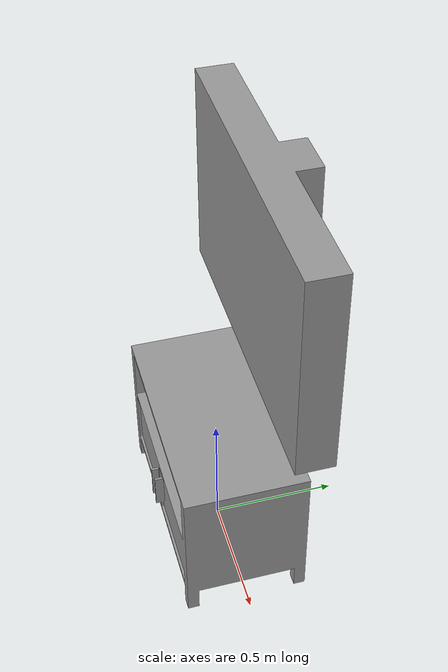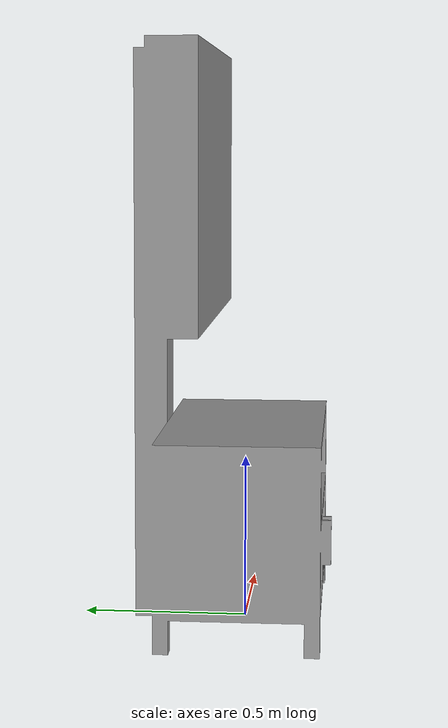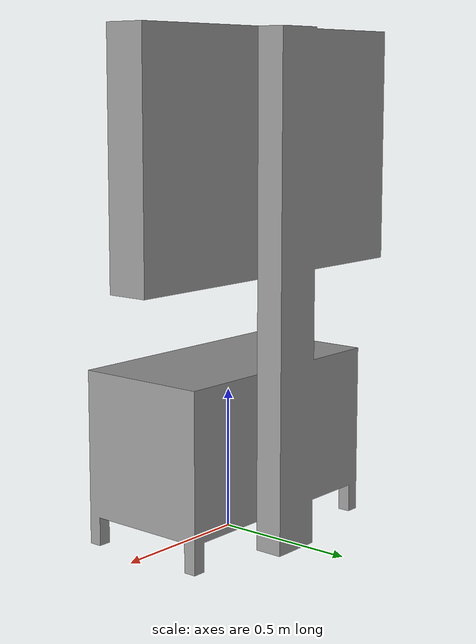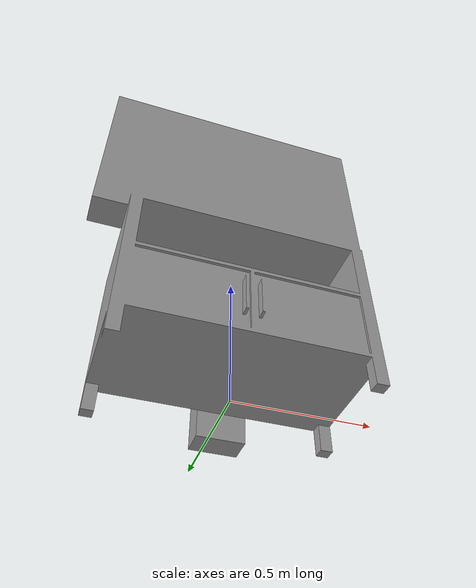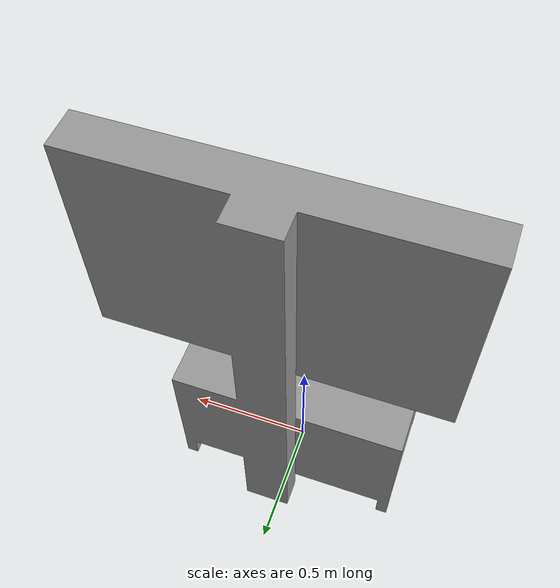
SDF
<?xml version="1.0" ?>
<sdf version="1.5">
  <model name="tv">
    <static>true</static>
    <link name='defaultModel_0::custom_0'>
      <pose>0 0 0 0 0 0</pose>
      <gravity>1</gravity>
      <self_collide>0</self_collide>
      <kinematic>0</kinematic>
      <visual name='custom_0_visual'>
        <pose>0 0 0 0 0 0</pose>
        <geometry>
          <mesh>
            <uri>model://tv/tv.dae</uri>
            <scale>1 1 1</scale>
          </mesh>
        </geometry>
        <material>
          <script>
            <uri>file://media/materials/scripts/gazebo.material</uri>
            <name>Gazebo/Grey</name>
          </script>
        </material>
      </visual>
      <collision name='defaultModel_0::custom_0_collision'>
        <geometry>
          <mesh>
            <uri>model://tv/tv.dae</uri>
            <scale>1 1 1</scale>
          </mesh>
        </geometry>
        <pose>0 0 0 0 0 0</pose>
      </collision>
    </link>
  </model>
</sdf>
